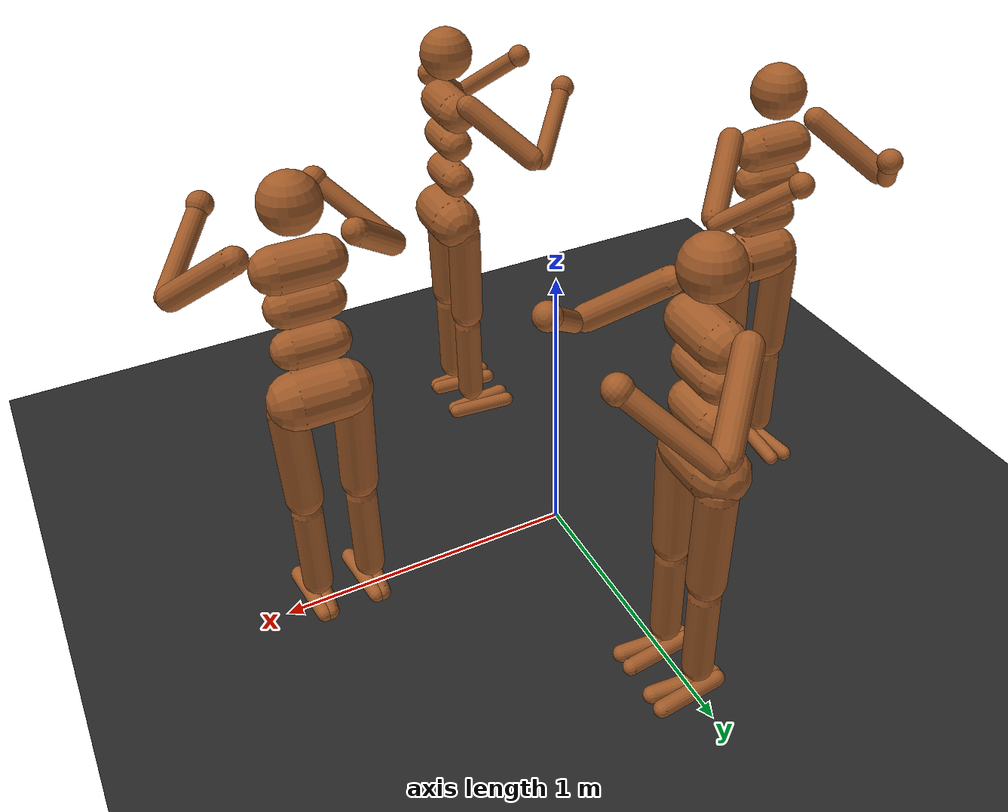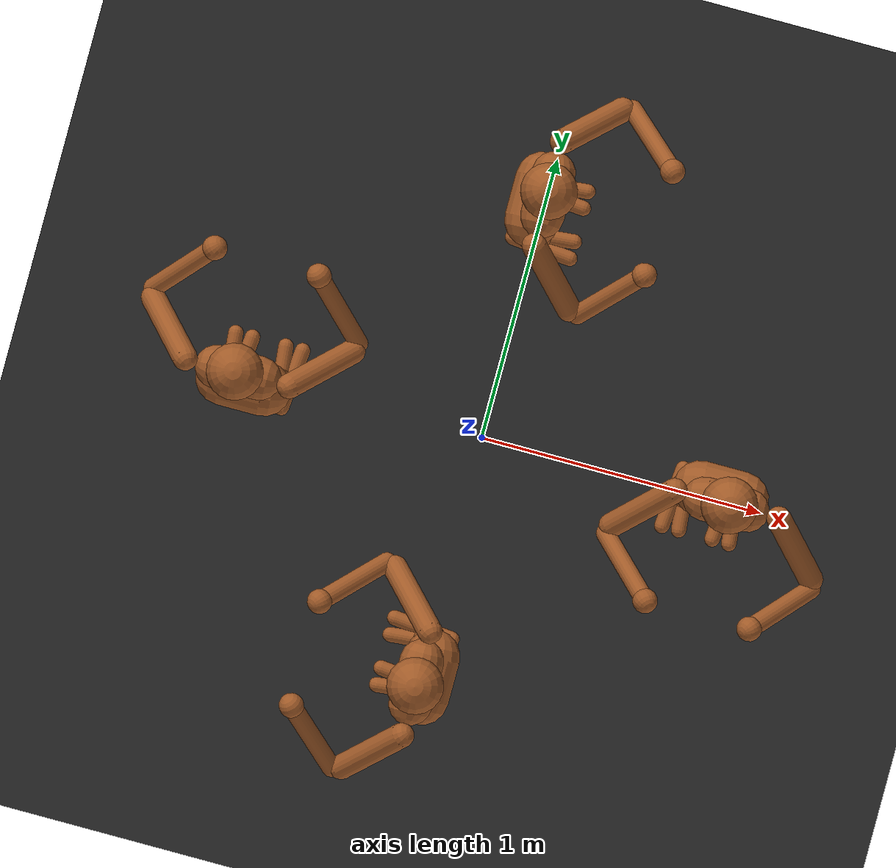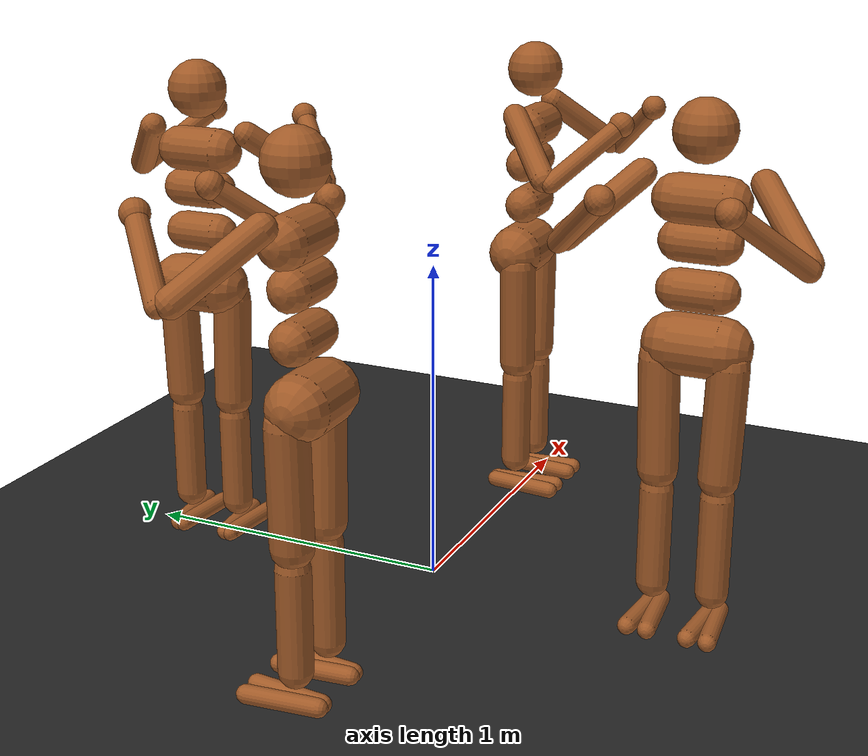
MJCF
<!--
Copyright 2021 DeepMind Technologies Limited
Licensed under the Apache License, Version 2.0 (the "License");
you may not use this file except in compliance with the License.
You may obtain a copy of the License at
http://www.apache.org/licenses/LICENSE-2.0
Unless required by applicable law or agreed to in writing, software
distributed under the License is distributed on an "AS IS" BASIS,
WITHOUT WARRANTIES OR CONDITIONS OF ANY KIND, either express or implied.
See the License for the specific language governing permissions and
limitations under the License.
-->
<mujoco model="HumanoidBrace">
  <option timestep="0.005"/>

  <visual>
    <map force="0.1" zfar="30"/>
    <rgba haze="0.15 0.25 0.35 1"/>
    <global offwidth="2560" offheight="1440" elevation="-20" azimuth="120"/>
  </visual>

  <statistic center="0 0 0.7"/>

  <asset>
    <texture type="skybox" builtin="gradient" rgb1=".3 .5 .7" rgb2="0 0 0" width="32" height="512"/>
    <texture name="body" type="cube" builtin="flat" mark="cross" width="127" height="1278" rgb1="0.8 0.6 0.4" rgb2="0.8 0.6 0.4" markrgb="1 1 1" random="0.01"/>
    <material name="body" texture="body" texuniform="true" rgba="0.8 0.6 .4 1"/>
    <texture name="grid" type="2d" builtin="checker" width="512" height="512" rgb1="0 0 0" rgb2=".3 .3 .3"/>
    <material name="grid" texture="grid" texrepeat="1 1" texuniform="true" reflectance="0"/>
    <texture name="pointer" type="2d" builtin="checker" width="512" height="512" rgb1=".1 .2 .3" rgb2=".2 .3 .4"/>
    <material name="pointer" texture="pointer" texuniform="true" rgba="0.1 0 0 1"/>
    <material name="connector" rgba="0.3 0.3 0.8 0.7"/>
  </asset>

  <default>
    <motor ctrlrange="-1 1" ctrllimited="true"/>
    <default class="body">
      <!-- geoms -->
      <geom type="capsule" condim="1" friction=".7" solimp=".9 .99 .003" solref=".015 1" material="body"/>
      <default class="thigh">
        <geom size=".06"/>
      </default>
      <default class="shin">
        <geom fromto="0 0 0 0 0 -.3"  size=".049"/>
      </default>
      <default class="foot">
        <geom size=".027"/>
        <default class="foot1">
          <geom fromto="-.07 -.01 0 .14 -.03 0"/>
        </default>
        <default class="foot2">
          <geom fromto="-.07 .01 0 .14  .03 0"/>
        </default>
      </default>
      <default class="arm_upper">
        <geom size=".04"/>
      </default>
      <default class="arm_lower">
        <geom size=".031"/>
      </default>
      <default class="hand">
        <geom type="sphere" size=".04"/>
      </default>

      <!-- joints -->
      <joint type="hinge" damping=".2" stiffness="1" armature=".01" limited="true" solimplimit="0 .99 .01"/>
      <default class="joint_big">
        <joint damping="5" stiffness="10"/>
        <default class="hip_x">
          <joint range="-30 10"/>
        </default>
        <default class="hip_z">
          <joint range="-60 35"/>
        </default>
        <default class="hip_y">
          <joint axis="0 1 0" range="-150 20"/>
        </default>
        <default class="joint_big_stiff">
          <joint stiffness="20"/>
        </default>
      </default>
      <default class="knee">
        <joint pos="0 0 .02" axis="0 -1 0" range="-160 2"/>
      </default>
      <default class="ankle">
        <joint range="-50 50"/>
        <default class="ankle_y">
          <joint pos="0 0 .08" axis="0 1 0" stiffness="6"/>
        </default>
        <default class="ankle_x">
          <joint pos="0 0 .04" stiffness="3"/>
        </default>
      </default>
      <default class="shoulder">
        <joint range="-85 60"/>
      </default>
      <default class="elbow">
        <joint range="-100 50" stiffness="0"/>
      </default>
    </default>
  </default>

  <worldbody>
    <geom name="floor" size="0 0 .05" type="plane" material="grid" condim="3"/>
    <!-- Fixed spotlight - removed targetbodycom mode -->
    <light name="spotlight" diffuse=".8 .8 .8" specular="0.3 0.3 0.3" pos="0 -4 4" dir="0 1 0" directional="true"/>

    <!-- Humanoid 1 - North position, facing outward -->
    <body name="humanoid1" pos="0 0.8 1.282" euler="0 0 0" childclass="body">
      <freejoint name="root1"/>
      <geom name="torso1" fromto="0 -.07 0 0 .07 0" size=".07"/>
      <geom name="waist_upper1" fromto="-.01 -.06 -.12 -.01 .06 -.12" size=".06"/>
      <body name="head1" pos="0 0 .19">
        <geom name="head1" type="sphere" size=".09"/>
      </body>
      <body name="waist_lower1" pos="-.01 0 -.26">
        <geom name="waist_lower1" fromto="0 -.06 0 0 .06 0" size=".06"/>
        <joint name="abdomen_z1" pos="0 0 .065" axis="0 0 1" range="-45 45" class="joint_big_stiff"/>
        <joint name="abdomen_y1" pos="0 0 .065" axis="0 1 0" range="-75 30" class="joint_big"/>
        <body name="pelvis1" pos="0 0 -.165">
          <joint name="abdomen_x1" pos="0 0 .1" axis="1 0 0" range="-35 35" class="joint_big"/>
          <geom name="butt1" fromto="-.02 -.07 0 -.02 .07 0" size=".09"/>
          <!-- Legs for humanoid1 -->
          <body name="thigh_right1" pos="0 -.1 -.04">
            <joint name="hip_x_right1" axis="1 0 0" class="hip_x"/>
            <joint name="hip_z_right1" axis="0 0 1" class="hip_z"/>
            <joint name="hip_y_right1" class="hip_y"/>
            <geom name="thigh_right1" fromto="0 0 0 0 .01 -.34" class="thigh"/>
            <body name="shin_right1" pos="0 .01 -.4">
              <joint name="knee_right1" class="knee"/>
              <geom name="shin_right1" class="shin"/>
              <body name="foot_right1" pos="0 0 -.39">
                <joint name="ankle_y_right1" class="ankle_y"/>
                <joint name="ankle_x_right1" class="ankle_x" axis="1 0 .5"/>
                <geom name="foot1_right1" class="foot1"/>
                <geom name="foot2_right1" class="foot2"/>
              </body>
            </body>
          </body>
          <body name="thigh_left1" pos="0 .1 -.04">
            <joint name="hip_x_left1" axis="-1 0 0" class="hip_x"/>
            <joint name="hip_z_left1" axis="0 0 -1" class="hip_z"/>
            <joint name="hip_y_left1" class="hip_y"/>
            <geom name="thigh_left1" fromto="0 0 0 0 -.01 -.34" class="thigh"/>
            <body name="shin_left1" pos="0 -.01 -.4">
              <joint name="knee_left1" class="knee"/>
              <geom name="shin_left1" fromto="0 0 0 0 0 -.3" class="shin"/>
              <body name="foot_left1" pos="0 0 -.39">
                <joint name="ankle_y_left1" class="ankle_y"/>
                <joint name="ankle_x_left1" class="ankle_x" axis="-1 0 -.5"/>
                <geom name="foot1_left1" class="foot1"/>
                <geom name="foot2_left1" class="foot2"/>
              </body>
            </body>
          </body>
        </body>
      </body>
      <!-- Arms for humanoid1 - positioned for welding -->
      <body name="upper_arm_right1" pos="0 -.17 .06">
        <joint name="shoulder1_right1" axis="2 1 1" class="shoulder" pos="0 0 0"/>
        <joint name="shoulder2_right1" axis="0 -1 1" class="shoulder" pos="0 0 0"/>
        <geom name="upper_arm_right1" fromto="0 0 0 .16 -.16 -.16" class="arm_upper"/>
        <body name="lower_arm_right1" pos=".18 -.18 -.18">
          <joint name="elbow_right1" axis="0 -1 1" class="elbow" pos="0 0 0"/>
          <geom name="lower_arm_right1" fromto=".01 .01 .01 .17 .17 .17" class="arm_lower"/>
          <body name="hand_right1" pos=".18 .18 .18">
            <geom name="hand_right1" zaxis="1 1 1" class="hand"/>
          </body>
        </body>
      </body>
      <body name="upper_arm_left1" pos="0 .17 .06">
        <joint name="shoulder1_left1" axis="-2 1 -1" class="shoulder" pos="0 0 0"/>
        <joint name="shoulder2_left1" axis="0 -1 -1" class="shoulder" pos="0 0 0"/>
        <geom name="upper_arm_left1" fromto="0 0 0 .16 .16 -.16" class="arm_upper"/>
        <body name="lower_arm_left1" pos=".18 .18 -.18">
          <joint name="elbow_left1" axis="0 -1 -1" class="elbow" pos="0 0 0"/>
          <geom name="lower_arm_left1" fromto=".01 -.01 .01 .17 -.17 .17" class="arm_lower"/>
          <body name="hand_left1" pos=".18 -.18 .18">
            <geom name="hand_left1" zaxis="1 -1 1" class="hand"/>
          </body>
        </body>
      </body>
    </body>

    <!-- Humanoid 2 - East position, facing outward -->
    <body name="humanoid2" pos="0.8 0 1.282" euler="0 0 -90" childclass="body">
      <freejoint name="root2"/>
      <geom name="torso2" fromto="0 -.07 0 0 .07 0" size=".07"/>
      <geom name="waist_upper2" fromto="-.01 -.06 -.12 -.01 .06 -.12" size=".06"/>
      <body name="head2" pos="0 0 .19">
        <geom name="head2" type="sphere" size=".09"/>
      </body>
      <body name="waist_lower2" pos="-.01 0 -.26">
        <geom name="waist_lower2" fromto="0 -.06 0 0 .06 0" size=".06"/>
        <joint name="abdomen_z2" pos="0 0 .065" axis="0 0 1" range="-45 45" class="joint_big_stiff"/>
        <joint name="abdomen_y2" pos="0 0 .065" axis="0 1 0" range="-75 30" class="joint_big"/>
        <body name="pelvis2" pos="0 0 -.165">
          <joint name="abdomen_x2" pos="0 0 .1" axis="1 0 0" range="-35 35" class="joint_big"/>
          <geom name="butt2" fromto="-.02 -.07 0 -.02 .07 0" size=".09"/>
          <!-- Legs for humanoid2 -->
          <body name="thigh_right2" pos="0 -.1 -.04">
            <joint name="hip_x_right2" axis="1 0 0" class="hip_x"/>
            <joint name="hip_z_right2" axis="0 0 1" class="hip_z"/>
            <joint name="hip_y_right2" class="hip_y"/>
            <geom name="thigh_right2" fromto="0 0 0 0 .01 -.34" class="thigh"/>
            <body name="shin_right2" pos="0 .01 -.4">
              <joint name="knee_right2" class="knee"/>
              <geom name="shin_right2" class="shin"/>
              <body name="foot_right2" pos="0 0 -.39">
                <joint name="ankle_y_right2" class="ankle_y"/>
                <joint name="ankle_x_right2" class="ankle_x" axis="1 0 .5"/>
                <geom name="foot1_right2" class="foot1"/>
                <geom name="foot2_right2" class="foot2"/>
              </body>
            </body>
          </body>
          <body name="thigh_left2" pos="0 .1 -.04">
            <joint name="hip_x_left2" axis="-1 0 0" class="hip_x"/>
            <joint name="hip_z_left2" axis="0 0 -1" class="hip_z"/>
            <joint name="hip_y_left2" class="hip_y"/>
            <geom name="thigh_left2" fromto="0 0 0 0 -.01 -.34" class="thigh"/>
            <body name="shin_left2" pos="0 -.01 -.4">
              <joint name="knee_left2" class="knee"/>
              <geom name="shin_left2" fromto="0 0 0 0 0 -.3" class="shin"/>
              <body name="foot_left2" pos="0 0 -.39">
                <joint name="ankle_y_left2" class="ankle_y"/>
                <joint name="ankle_x_left2" class="ankle_x" axis="-1 0 -.5"/>
                <geom name="foot1_left2" class="foot1"/>
                <geom name="foot2_left2" class="foot2"/>
              </body>
            </body>
          </body>
        </body>
      </body>
      <!-- Arms for humanoid2 - positioned for welding -->
      <body name="upper_arm_right2" pos="0 -.17 .06">
        <joint name="shoulder1_right2" axis="2 1 1" class="shoulder" pos="0 0 0"/>
        <joint name="shoulder2_right2" axis="0 -1 1" class="shoulder" pos="0 0 0"/>
        <geom name="upper_arm_right2" fromto="0 0 0 .16 -.16 -.16" class="arm_upper"/>
        <body name="lower_arm_right2" pos=".18 -.18 -.18">
          <joint name="elbow_right2" axis="0 -1 1" class="elbow" pos="0 0 0"/>
          <geom name="lower_arm_right2" fromto=".01 .01 .01 .17 .17 .17" class="arm_lower"/>
          <body name="hand_right2" pos=".18 .18 .18">
            <geom name="hand_right2" zaxis="1 1 1" class="hand"/>
          </body>
        </body>
      </body>
      <body name="upper_arm_left2" pos="0 .17 .06">
        <joint name="shoulder1_left2" axis="-2 1 -1" class="shoulder" pos="0 0 0"/>
        <joint name="shoulder2_left2" axis="0 -1 -1" class="shoulder" pos="0 0 0"/>
        <geom name="upper_arm_left2" fromto="0 0 0 .16 .16 -.16" class="arm_upper"/>
        <body name="lower_arm_left2" pos=".18 .18 -.18">
          <joint name="elbow_left2" axis="0 -1 -1" class="elbow" pos="0 0 0"/>
          <geom name="lower_arm_left2" fromto=".01 -.01 .01 .17 -.17 .17" class="arm_lower"/>
          <body name="hand_left2" pos=".18 -.18 .18">
            <geom name="hand_left2" zaxis="1 -1 1" class="hand"/>
          </body>
        </body>
      </body>
    </body>

    <!-- Humanoid 3 - South position, facing outward -->
    <body name="humanoid3" pos="0 -0.8 1.282" euler="0 0 180" childclass="body">
      <freejoint name="root3"/>
      <geom name="torso3" fromto="0 -.07 0 0 .07 0" size=".07"/>
      <geom name="waist_upper3" fromto="-.01 -.06 -.12 -.01 .06 -.12" size=".06"/>
      <body name="head3" pos="0 0 .19">
        <geom name="head3" type="sphere" size=".09"/>
      </body>
      <body name="waist_lower3" pos="-.01 0 -.26">
        <geom name="waist_lower3" fromto="0 -.06 0 0 .06 0" size=".06"/>
        <joint name="abdomen_z3" pos="0 0 .065" axis="0 0 1" range="-45 45" class="joint_big_stiff"/>
        <joint name="abdomen_y3" pos="0 0 .065" axis="0 1 0" range="-75 30" class="joint_big"/>
        <body name="pelvis3" pos="0 0 -.165">
          <joint name="abdomen_x3" pos="0 0 .1" axis="1 0 0" range="-35 35" class="joint_big"/>
          <geom name="butt3" fromto="-.02 -.07 0 -.02 .07 0" size=".09"/>
          <!-- Legs for humanoid3 -->
          <body name="thigh_right3" pos="0 -.1 -.04">
            <joint name="hip_x_right3" axis="1 0 0" class="hip_x"/>
            <joint name="hip_z_right3" axis="0 0 1" class="hip_z"/>
            <joint name="hip_y_right3" class="hip_y"/>
            <geom name="thigh_right3" fromto="0 0 0 0 .01 -.34" class="thigh"/>
            <body name="shin_right3" pos="0 .01 -.4">
              <joint name="knee_right3" class="knee"/>
              <geom name="shin_right3" class="shin"/>
              <body name="foot_right3" pos="0 0 -.39">
                <joint name="ankle_y_right3" class="ankle_y"/>
                <joint name="ankle_x_right3" class="ankle_x" axis="1 0 .5"/>
                <geom name="foot1_right3" class="foot1"/>
                <geom name="foot2_right3" class="foot2"/>
              </body>
            </body>
          </body>
          <body name="thigh_left3" pos="0 .1 -.04">
            <joint name="hip_x_left3" axis="-1 0 0" class="hip_x"/>
            <joint name="hip_z_left3" axis="0 0 -1" class="hip_z"/>
            <joint name="hip_y_left3" class="hip_y"/>
            <geom name="thigh_left3" fromto="0 0 0 0 -.01 -.34" class="thigh"/>
            <body name="shin_left3" pos="0 -.01 -.4">
              <joint name="knee_left3" class="knee"/>
              <geom name="shin_left3" fromto="0 0 0 0 0 -.3" class="shin"/>
              <body name="foot_left3" pos="0 0 -.39">
                <joint name="ankle_y_left3" class="ankle_y"/>
                <joint name="ankle_x_left3" class="ankle_x" axis="-1 0 -.5"/>
                <geom name="foot1_left3" class="foot1"/>
                <geom name="foot2_left3" class="foot2"/>
              </body>
            </body>
          </body>
        </body>
      </body>
      <!-- Arms for humanoid3 - positioned for welding -->
      <body name="upper_arm_right3" pos="0 -.17 .06">
        <joint name="shoulder1_right3" axis="2 1 1" class="shoulder" pos="0 0 0"/>
        <joint name="shoulder2_right3" axis="0 -1 1" class="shoulder" pos="0 0 0"/>
        <geom name="upper_arm_right3" fromto="0 0 0 .16 -.16 -.16" class="arm_upper"/>
        <body name="lower_arm_right3" pos=".18 -.18 -.18">
          <joint name="elbow_right3" axis="0 -1 1" class="elbow" pos="0 0 0"/>
          <geom name="lower_arm_right3" fromto=".01 .01 .01 .17 .17 .17" class="arm_lower"/>
          <body name="hand_right3" pos=".18 .18 .18">
            <geom name="hand_right3" zaxis="1 1 1" class="hand"/>
          </body>
        </body>
      </body>
      <body name="upper_arm_left3" pos="0 .17 .06">
        <joint name="shoulder1_left3" axis="-2 1 -1" class="shoulder" pos="0 0 0"/>
        <joint name="shoulder2_left3" axis="0 -1 -1" class="shoulder" pos="0 0 0"/>
        <geom name="upper_arm_left3" fromto="0 0 0 .16 .16 -.16" class="arm_upper"/>
        <body name="lower_arm_left3" pos=".18 .18 -.18">
          <joint name="elbow_left3" axis="0 -1 -1" class="elbow" pos="0 0 0"/>
          <geom name="lower_arm_left3" fromto=".01 -.01 .01 .17 -.17 .17" class="arm_lower"/>
          <body name="hand_left3" pos=".18 -.18 .18">
            <geom name="hand_left3" zaxis="1 -1 1" class="hand"/>
          </body>
        </body>
      </body>
    </body>

    <!-- Humanoid 4 - West position, facing outward -->
    <body name="humanoid4" pos="-0.8 0 1.282" euler="0 0 90" childclass="body">
      <freejoint name="root4"/>
      <geom name="torso4" fromto="0 -.07 0 0 .07 0" size=".07"/>
      <geom name="waist_upper4" fromto="-.01 -.06 -.12 -.01 .06 -.12" size=".06"/>
      <body name="head4" pos="0 0 .19">
        <geom name="head4" type="sphere" size=".09"/>
      </body>
      <body name="waist_lower4" pos="-.01 0 -.26">
        <geom name="waist_lower4" fromto="0 -.06 0 0 .06 0" size=".06"/>
        <joint name="abdomen_z4" pos="0 0 .065" axis="0 0 1" range="-45 45" class="joint_big_stiff"/>
        <joint name="abdomen_y4" pos="0 0 .065" axis="0 1 0" range="-75 30" class="joint_big"/>
        <body name="pelvis4" pos="0 0 -.165">
          <joint name="abdomen_x4" pos="0 0 .1" axis="1 0 0" range="-35 35" class="joint_big"/>
          <geom name="butt4" fromto="-.02 -.07 0 -.02 .07 0" size=".09"/>
          <!-- Legs for humanoid4 -->
          <body name="thigh_right4" pos="0 -.1 -.04">
            <joint name="hip_x_right4" axis="1 0 0" class="hip_x"/>
            <joint name="hip_z_right4" axis="0 0 1" class="hip_z"/>
            <joint name="hip_y_right4" class="hip_y"/>
            <geom name="thigh_right4" fromto="0 0 0 0 .01 -.34" class="thigh"/>
            <body name="shin_right4" pos="0 .01 -.4">
              <joint name="knee_right4" class="knee"/>
              <geom name="shin_right4" class="shin"/>
              <body name="foot_right4" pos="0 0 -.39">
                <joint name="ankle_y_right4" class="ankle_y"/>
                <joint name="ankle_x_right4" class="ankle_x" axis="1 0 .5"/>
                <geom name="foot1_right4" class="foot1"/>
                <geom name="foot2_right4" class="foot2"/>
              </body>
            </body>
          </body>
          <body name="thigh_left4" pos="0 .1 -.04">
            <joint name="hip_x_left4" axis="-1 0 0" class="hip_x"/>
            <joint name="hip_z_left4" axis="0 0 -1" class="hip_z"/>
            <joint name="hip_y_left4" class="hip_y"/>
            <geom name="thigh_left4" fromto="0 0 0 0 -.01 -.34" class="thigh"/>
            <body name="shin_left4" pos="0 -.01 -.4">
              <joint name="knee_left4" class="knee"/>
              <geom name="shin_left4" fromto="0 0 0 0 0 -.3" class="shin"/>
              <body name="foot_left4" pos="0 0 -.39">
                <joint name="ankle_y_left4" class="ankle_y"/>
                <joint name="ankle_x_left4" class="ankle_x" axis="-1 0 -.5"/>
                <geom name="foot1_left4" class="foot1"/>
                <geom name="foot2_left4" class="foot2"/>
              </body>
            </body>
          </body>
        </body>
      </body>
      <!-- Arms for humanoid4 - positioned for welding -->
      <body name="upper_arm_right4" pos="0 -.17 .06">
        <joint name="shoulder1_right4" axis="2 1 1" class="shoulder" pos="0 0 0"/>
        <joint name="shoulder2_right4" axis="0 -1 1" class="shoulder" pos="0 0 0"/>
        <geom name="upper_arm_right4" fromto="0 0 0 .16 -.16 -.16" class="arm_upper"/>
        <body name="lower_arm_right4" pos=".18 -.18 -.18">
          <joint name="elbow_right4" axis="0 -1 1" class="elbow" pos="0 0 0"/>
          <geom name="lower_arm_right4" fromto=".01 .01 .01 .17 .17 .17" class="arm_lower"/>
          <body name="hand_right4" pos=".18 .18 .18">
            <geom name="hand_right4" zaxis="1 1 1" class="hand"/>
          </body>
        </body>
      </body>
      <body name="upper_arm_left4" pos="0 .17 .06">
        <joint name="shoulder1_left4" axis="-2 1 -1" class="shoulder" pos="0 0 0"/>
        <joint name="shoulder2_left4" axis="0 -1 -1" class="shoulder" pos="0 0 0"/>
        <geom name="upper_arm_left4" fromto="0 0 0 .16 .16 -.16" class="arm_upper"/>
        <body name="lower_arm_left4" pos=".18 .18 -.18">
          <joint name="elbow_left4" axis="0 -1 -1" class="elbow" pos="0 0 0"/>
          <geom name="lower_arm_left4" fromto=".01 -.01 .01 .17 -.17 .17" class="arm_lower"/>
          <body name="hand_left4" pos=".18 -.18 .18">
            <geom name="hand_left4" zaxis="1 -1 1" class="hand"/>
          </body>
        </body>
      </body>
    </body>

  </worldbody>

  <equality>
    <!-- Weld joints connecting the humanoids at their shoulders -->
    <weld name="weld_1_2" body1="hand_left1" body2="hand_right2" relpose="0 0 0 0 0 0 1" solimp="0.9 0.95 0.001" solref="0.02 1"/>
    <weld name="weld_2_3" body1="hand_left2" body2="hand_right3" relpose="0 0 0 0 0 0 1" solimp="0.9 0.95 0.001" solref="0.02 1"/>
    <weld name="weld_3_4" body1="hand_left3" body2="hand_right4" relpose="0 0 0 0 0 0 1" solimp="0.9 0.95 0.001" solref="0.02 1"/>
    <weld name="weld_4_1" body1="hand_left4" body2="hand_right1" relpose="0 0 0 0 0 0 1" solimp="0.9 0.95 0.001" solref="0.02 1"/>
  </equality>

  <contact>
    <exclude body1="waist_lower1" body2="thigh_right1"/>
    <exclude body1="waist_lower1" body2="thigh_left1"/>
    <exclude body1="waist_lower2" body2="thigh_right2"/>
    <exclude body1="waist_lower2" body2="thigh_left2"/>
    <exclude body1="waist_lower3" body2="thigh_right3"/>
    <exclude body1="waist_lower3" body2="thigh_left3"/>
    <exclude body1="waist_lower4" body2="thigh_right4"/>
    <exclude body1="waist_lower4" body2="thigh_left4"/>
  </contact>

  <actuator>

  <!-- Humanoid 1 Actuators -->
  <motor name="abdomen_z1" joint="abdomen_z1" gear="20"/>
  <motor name="abdomen_y1" joint="abdomen_y1" gear="50"/>
  <motor name="abdomen_x1" joint="abdomen_x1" gear="50"/>
  <motor name="hip_x_right1" joint="hip_x_right1" gear="100"/>
  <motor name="hip_z_right1" joint="hip_z_right1" gear="100"/>
  <motor name="hip_y_right1" joint="hip_y_right1" gear="100"/>
  <motor name="knee_right1" joint="knee_right1" gear="100"/>
  <motor name="ankle_y_right1" joint="ankle_y_right1" gear="50"/>
  <motor name="ankle_x_right1" joint="ankle_x_right1" gear="30"/>
  <motor name="hip_x_left1" joint="hip_x_left1" gear="100"/>
  <motor name="hip_z_left1" joint="hip_z_left1" gear="100"/>
  <motor name="hip_y_left1" joint="hip_y_left1" gear="100"/>
  <motor name="knee_left1" joint="knee_left1" gear="100"/>
  <motor name="ankle_y_left1" joint="ankle_y_left1" gear="50"/>
  <motor name="ankle_x_left1" joint="ankle_x_left1" gear="30"/>
  <motor name="shoulder1_right1" joint="shoulder1_right1" gear="40"/>
  <motor name="shoulder2_right1" joint="shoulder2_right1" gear="40"/>
  <motor name="elbow_right1" joint="elbow_right1" gear="30"/>
  <motor name="shoulder1_left1" joint="shoulder1_left1" gear="40"/>
  <motor name="shoulder2_left1" joint="shoulder2_left1" gear="40"/>
  <motor name="elbow_left1" joint="elbow_left1" gear="30"/>

  <!-- Humanoid 2 Actuators -->
  <motor name="abdomen_z2" joint="abdomen_z2" gear="20"/>
  <motor name="abdomen_y2" joint="abdomen_y2" gear="50"/>
  <motor name="abdomen_x2" joint="abdomen_x2" gear="50"/>
  <motor name="hip_x_right2" joint="hip_x_right2" gear="100"/>
  <motor name="hip_z_right2" joint="hip_z_right2" gear="100"/>
  <motor name="hip_y_right2" joint="hip_y_right2" gear="100"/>
  <motor name="knee_right2" joint="knee_right2" gear="100"/>
  <motor name="ankle_y_right2" joint="ankle_y_right2" gear="50"/>
  <motor name="ankle_x_right2" joint="ankle_x_right2" gear="30"/>
  <motor name="hip_x_left2" joint="hip_x_left2" gear="100"/>
  <motor name="hip_z_left2" joint="hip_z_left2" gear="100"/>
  <motor name="hip_y_left2" joint="hip_y_left2" gear="100"/>
  <motor name="knee_left2" joint="knee_left2" gear="100"/>
  <motor name="ankle_y_left2" joint="ankle_y_left2" gear="50"/>
  <motor name="ankle_x_left2" joint="ankle_x_left2" gear="30"/>
  <motor name="shoulder1_right2" joint="shoulder1_right2" gear="40"/>
  <motor name="shoulder2_right2" joint="shoulder2_right2" gear="40"/>
  <motor name="elbow_right2" joint="elbow_right2" gear="30"/>
  <motor name="shoulder1_left2" joint="shoulder1_left2" gear="40"/>
  <motor name="shoulder2_left2" joint="shoulder2_left2" gear="40"/>
  <motor name="elbow_left2" joint="elbow_left2" gear="30"/>

  <!-- Humanoid 3 Actuators -->
  <motor name="abdomen_z3" joint="abdomen_z3" gear="20"/>
  <motor name="abdomen_y3" joint="abdomen_y3" gear="50"/>
  <motor name="abdomen_x3" joint="abdomen_x3" gear="50"/>
  <motor name="hip_x_right3" joint="hip_x_right3" gear="100"/>
  <motor name="hip_z_right3" joint="hip_z_right3" gear="100"/>
  <motor name="hip_y_right3" joint="hip_y_right3" gear="100"/>
  <motor name="knee_right3" joint="knee_right3" gear="100"/>
  <motor name="ankle_y_right3" joint="ankle_y_right3" gear="50"/>
  <motor name="ankle_x_right3" joint="ankle_x_right3" gear="30"/>
  <motor name="hip_x_left3" joint="hip_x_left3" gear="100"/>
  <motor name="hip_z_left3" joint="hip_z_left3" gear="100"/>
  <motor name="hip_y_left3" joint="hip_y_left3" gear="100"/>
  <motor name="knee_left3" joint="knee_left3" gear="100"/>
  <motor name="ankle_y_left3" joint="ankle_y_left3" gear="50"/>
  <motor name="ankle_x_left3" joint="ankle_x_left3" gear="30"/>
  <motor name="shoulder1_right3" joint="shoulder1_right3" gear="40"/>
  <motor name="shoulder2_right3" joint="shoulder2_right3" gear="40"/>
  <motor name="elbow_right3" joint="elbow_right3" gear="30"/>
  <motor name="shoulder1_left3" joint="shoulder1_left3" gear="40"/>
  <motor name="shoulder2_left3" joint="shoulder2_left3" gear="40"/>
  <motor name="elbow_left3" joint="elbow_left3" gear="30"/>

  <!-- Humanoid 4 Actuators -->
  <motor name="abdomen_z4" joint="abdomen_z4" gear="20"/>
  <motor name="abdomen_y4" joint="abdomen_y4" gear="50"/>
  <motor name="abdomen_x4" joint="abdomen_x4" gear="50"/>
  <motor name="hip_x_right4" joint="hip_x_right4" gear="100"/>
  <motor name="hip_z_right4" joint="hip_z_right4" gear="100"/>
  <motor name="hip_y_right4" joint="hip_y_right4" gear="100"/>
  <motor name="knee_right4" joint="knee_right4" gear="100"/>
  <motor name="ankle_y_right4" joint="ankle_y_right4" gear="50"/>
  <motor name="ankle_x_right4" joint="ankle_x_right4" gear="30"/>
  <motor name="hip_x_left4" joint="hip_x_left4" gear="100"/>
  <motor name="hip_z_left4" joint="hip_z_left4" gear="100"/>
  <motor name="hip_y_left4" joint="hip_y_left4" gear="100"/>
  <motor name="knee_left4" joint="knee_left4" gear="100"/>
  <motor name="ankle_y_left4" joint="ankle_y_left4" gear="50"/>
  <motor name="ankle_x_left4" joint="ankle_x_left4" gear="30"/>
  <motor name="shoulder1_right4" joint="shoulder1_right4" gear="40"/>
  <motor name="shoulder2_right4" joint="shoulder2_right4" gear="40"/>
  <motor name="elbow_right4" joint="elbow_right4" gear="30"/>
  <motor name="shoulder1_left4" joint="shoulder1_left4" gear="40"/>
  <motor name="shoulder2_left4" joint="shoulder2_left4" gear="40"/>
  <motor name="elbow_left4" joint="elbow_left4" gear="30"/>
  </actuator>
</mujoco>
